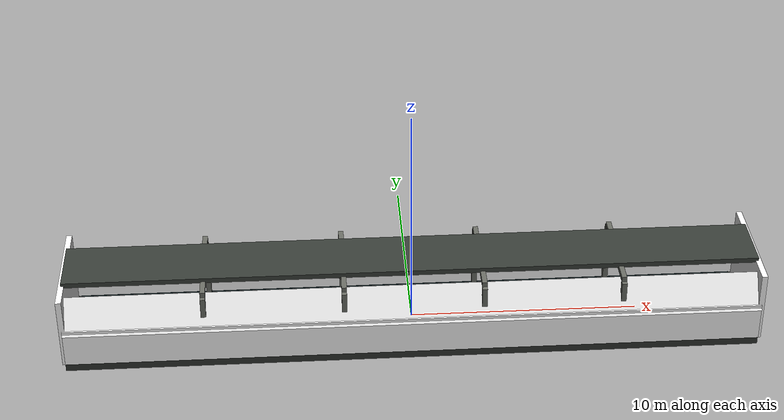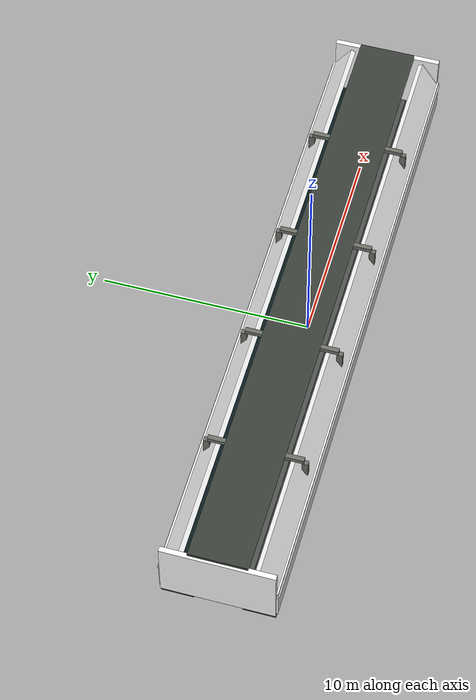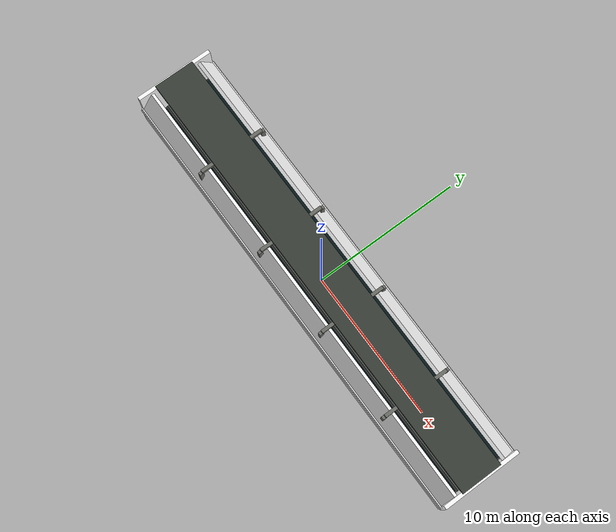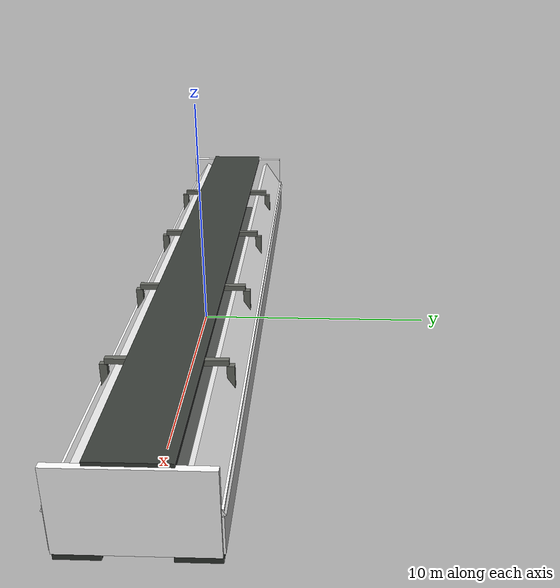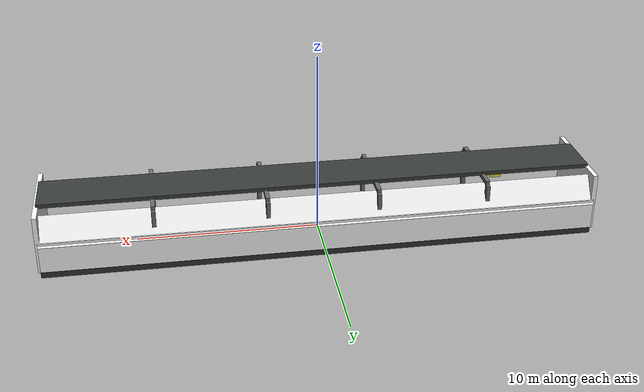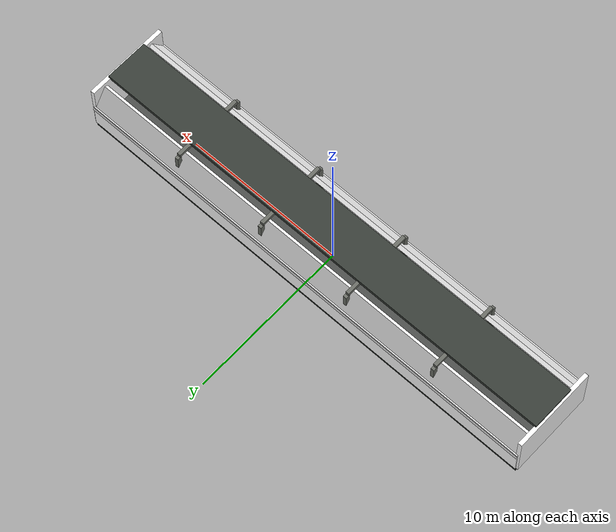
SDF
<?xml version="1.0"?>
<!-- Download-free sewer gallery: connected conduit segments, wet channels,
     masonry response texture, reflective water, and retro maintenance signs. -->
<sdf version="1.9">
  <world name="turtlebot3_sewer">
    <physics name="default" type="ignored">
      <max_step_size>0.004</max_step_size>
      <real_time_factor>1.0</real_time_factor>
      <real_time_update_rate>250</real_time_update_rate>
    </physics>
    <plugin filename="gz-sim-physics-system" name="gz::sim::systems::Physics"/>
    <plugin filename="gz-sim-scene-broadcaster-system" name="gz::sim::systems::SceneBroadcaster"/>
    <plugin filename="gz-sim-user-commands-system" name="gz::sim::systems::UserCommands"/>
    <plugin filename="gz-sim-imu-system" name="gz::sim::systems::Imu"/>
    <plugin filename="gz-sim-altimeter-system" name="gz::sim::systems::Altimeter"/>

    <scene>
      <ambient>0.08 0.1 0.12 1</ambient>
      <background>0.015 0.02 0.025 1</background>
      <shadows>true</shadows>
    </scene>
    <light type="point" name="lamp_west">
      <pose>-8 0 2.7 0 0 0</pose><diffuse>0.9 0.72 0.46 1</diffuse>
      <specular>0.2 0.18 0.14 1</specular><attenuation><range>11</range><constant>0.3</constant><linear>0.08</linear><quadratic>0.02</quadratic></attenuation>
    </light>
    <light type="point" name="lamp_centre">
      <pose>0 0 2.7 0 0 0</pose><diffuse>0.65 0.78 0.82 1</diffuse>
      <specular>0.18 0.2 0.22 1</specular><attenuation><range>11</range><constant>0.3</constant><linear>0.08</linear><quadratic>0.02</quadratic></attenuation>
    </light>
    <light type="point" name="lamp_east">
      <pose>8 0 2.7 0 0 0</pose><diffuse>0.9 0.72 0.46 1</diffuse>
      <specular>0.2 0.18 0.14 1</specular><attenuation><range>11</range><constant>0.3</constant><linear>0.08</linear><quadratic>0.02</quadratic></attenuation>
    </light>

    <model name="service_walkway">
      <static>true</static><pose>0 0 -0.05 0 0 0</pose>
      <link name="link"><collision name="collision"><geometry><box><size>30 2.2 0.1</size></box></geometry></collision>
        <visual name="visual"><laser_retro>0.38</laser_retro><geometry><box><size>30 2.2 0.1</size></box></geometry><material><diffuse>0.3 0.31 0.3 1</diffuse><specular>0.06 0.06 0.06 1</specular></material></visual></link>
    </model>
    <model name="floor_west_channel">
      <static>true</static><pose>0 1.85 -0.2 0 0 0</pose>
      <link name="link"><collision name="collision"><geometry><box><size>30 1.5 0.35</size></box></geometry></collision>
        <visual name="visual"><laser_retro>0.24</laser_retro><geometry><box><size>30 1.5 0.35</size></box></geometry><material><diffuse>0.18 0.2 0.18 1</diffuse></material></visual></link>
    </model>
    <model name="floor_east_channel">
      <static>true</static><pose>0 -1.85 -0.2 0 0 0</pose>
      <link name="link"><collision name="collision"><geometry><box><size>30 1.5 0.35</size></box></geometry></collision>
        <visual name="visual"><laser_retro>0.24</laser_retro><geometry><box><size>30 1.5 0.35</size></box></geometry><material><diffuse>0.18 0.2 0.18 1</diffuse></material></visual></link>
    </model>

    <!-- Thin, glossy water surfaces sit below the central drive path. -->
    <model name="water_north">
      <static>true</static><pose>0 1.85 0.005 0 0 0</pose>
      <link name="link"><visual name="visual"><laser_retro>0.04</laser_retro><geometry><box><size>29.5 1.25 0.015</size></box></geometry><material><diffuse>0.03 0.11 0.13 0.75</diffuse><specular>0.42 0.42 0.42 1</specular></material><transparency>0.25</transparency></visual></link>
    </model>
    <model name="water_south">
      <static>true</static><pose>0 -1.85 0.005 0 0 0</pose>
      <link name="link"><visual name="visual"><laser_retro>0.04</laser_retro><geometry><box><size>29.5 1.25 0.015</size></box></geometry><material><diffuse>0.03 0.11 0.13 0.75</diffuse><specular>0.42 0.42 0.42 1</specular></material><transparency>0.25</transparency></visual></link>
    </model>

    <!-- Continuous lower walls and inward-leaning shoulders form the conduit.
         Their PBR albedo is paired with the per-pixel Ouster response map. -->
    <model name="masonry_shell">
      <static>true</static>
      <link name="link">
        <collision name="north_wall_c"><pose>0 2.55 0.85 0 0 0</pose><geometry><box><size>30 0.25 1.7</size></box></geometry></collision>
        <visual name="north_wall"><pose>0 2.55 0.85 0 0 0</pose><geometry><box><size>30 0.25 1.7</size></box></geometry><material><ambient>1 1 1 1</ambient><diffuse>1 1 1 1</diffuse><pbr><metal><albedo_map>../media/materials/textures/brick_graffiti.png</albedo_map><metalness>0</metalness><roughness>0.9</roughness></metal></pbr></material></visual>
        <collision name="south_wall_c"><pose>0 -2.55 0.85 0 0 0</pose><geometry><box><size>30 0.25 1.7</size></box></geometry></collision>
        <visual name="south_wall"><pose>0 -2.55 0.85 0 0 0</pose><geometry><box><size>30 0.25 1.7</size></box></geometry><material><ambient>1 1 1 1</ambient><diffuse>1 1 1 1</diffuse><pbr><metal><albedo_map>../media/materials/textures/brick_graffiti.png</albedo_map><metalness>0</metalness><roughness>0.9</roughness></metal></pbr></material></visual>
        <collision name="north_shoulder_c"><pose>0 2.17 2.12 0.58 0 0</pose><geometry><box><size>30 0.25 1.7</size></box></geometry></collision>
        <visual name="north_shoulder"><pose>0 2.17 2.12 0.58 0 0</pose><geometry><box><size>30 0.25 1.7</size></box></geometry><material><ambient>1 1 1 1</ambient><diffuse>1 1 1 1</diffuse><pbr><metal><albedo_map>../media/materials/textures/brick_graffiti.png</albedo_map><metalness>0</metalness><roughness>0.9</roughness></metal></pbr></material></visual>
        <collision name="south_shoulder_c"><pose>0 -2.17 2.12 -0.58 0 0</pose><geometry><box><size>30 0.25 1.7</size></box></geometry></collision>
        <visual name="south_shoulder"><pose>0 -2.17 2.12 -0.58 0 0</pose><geometry><box><size>30 0.25 1.7</size></box></geometry><material><ambient>1 1 1 1</ambient><diffuse>1 1 1 1</diffuse><pbr><metal><albedo_map>../media/materials/textures/brick_graffiti.png</albedo_map><metalness>0</metalness><roughness>0.9</roughness></metal></pbr></material></visual>
        <collision name="ceiling_c"><pose>0 0 3.18 0 0 0</pose><geometry><box><size>30 2.7 0.22</size></box></geometry></collision>
        <visual name="ceiling"><pose>0 0 3.18 0 0 0</pose><laser_retro>0.31</laser_retro><geometry><box><size>30 2.7 0.22</size></box></geometry><material><diffuse>0.22 0.24 0.22 1</diffuse></material></visual>
        <collision name="end_west_c"><pose>-15 0 1.55 0 0 0</pose><geometry><box><size>0.25 5.2 3.2</size></box></geometry></collision>
        <visual name="end_west"><pose>-15 0 1.55 0 0 0</pose><geometry><box><size>0.25 5.2 3.2</size></box></geometry><material><ambient>1 1 1 1</ambient><diffuse>1 1 1 1</diffuse><pbr><metal><albedo_map>../media/materials/textures/brick_graffiti.png</albedo_map><metalness>0</metalness><roughness>0.9</roughness></metal></pbr></material></visual>
        <collision name="end_east_c"><pose>15 0 1.55 0 0 0</pose><geometry><box><size>0.25 5.2 3.2</size></box></geometry></collision>
        <visual name="end_east"><pose>15 0 1.55 0 0 0</pose><geometry><box><size>0.25 5.2 3.2</size></box></geometry><material><ambient>1 1 1 1</ambient><diffuse>1 1 1 1</diffuse><pbr><metal><albedo_map>../media/materials/textures/brick_graffiti.png</albedo_map><metalness>0</metalness><roughness>0.9</roughness></metal></pbr></material></visual>
      </link>
    </model>

    <!-- Repeated ribs break the gallery into a visible series of conduits. -->
    <model name="conduit_ribs">
      <static>true</static>
      <link name="link">
        <visual name="rib_west_n"><pose>-9 2.25 1.45 0 0 0</pose><laser_retro>0.52</laser_retro><geometry><box><size>0.22 0.28 2.9</size></box></geometry><material><diffuse>0.42 0.43 0.4 1</diffuse></material></visual>
        <visual name="rib_west_s"><pose>-9 -2.25 1.45 0 0 0</pose><laser_retro>0.52</laser_retro><geometry><box><size>0.22 0.28 2.9</size></box></geometry><material><diffuse>0.42 0.43 0.4 1</diffuse></material></visual>
        <visual name="rib_west_top"><pose>-9 0 3.02 0 0 0</pose><laser_retro>0.52</laser_retro><geometry><box><size>0.22 4.4 0.22</size></box></geometry><material><diffuse>0.42 0.43 0.4 1</diffuse></material></visual>
        <visual name="rib_mid_n"><pose>-3 2.25 1.45 0 0 0</pose><laser_retro>0.52</laser_retro><geometry><box><size>0.22 0.28 2.9</size></box></geometry><material><diffuse>0.42 0.43 0.4 1</diffuse></material></visual>
        <visual name="rib_mid_s"><pose>-3 -2.25 1.45 0 0 0</pose><laser_retro>0.52</laser_retro><geometry><box><size>0.22 0.28 2.9</size></box></geometry><material><diffuse>0.42 0.43 0.4 1</diffuse></material></visual>
        <visual name="rib_mid_top"><pose>-3 0 3.02 0 0 0</pose><laser_retro>0.52</laser_retro><geometry><box><size>0.22 4.4 0.22</size></box></geometry><material><diffuse>0.42 0.43 0.4 1</diffuse></material></visual>
        <visual name="rib_east_n"><pose>3 2.25 1.45 0 0 0</pose><laser_retro>0.52</laser_retro><geometry><box><size>0.22 0.28 2.9</size></box></geometry><material><diffuse>0.42 0.43 0.4 1</diffuse></material></visual>
        <visual name="rib_east_s"><pose>3 -2.25 1.45 0 0 0</pose><laser_retro>0.52</laser_retro><geometry><box><size>0.22 0.28 2.9</size></box></geometry><material><diffuse>0.42 0.43 0.4 1</diffuse></material></visual>
        <visual name="rib_east_top"><pose>3 0 3.02 0 0 0</pose><laser_retro>0.52</laser_retro><geometry><box><size>0.22 4.4 0.22</size></box></geometry><material><diffuse>0.42 0.43 0.4 1</diffuse></material></visual>
        <visual name="rib_far_n"><pose>9 2.25 1.45 0 0 0</pose><laser_retro>0.52</laser_retro><geometry><box><size>0.22 0.28 2.9</size></box></geometry><material><diffuse>0.42 0.43 0.4 1</diffuse></material></visual>
        <visual name="rib_far_s"><pose>9 -2.25 1.45 0 0 0</pose><laser_retro>0.52</laser_retro><geometry><box><size>0.22 0.28 2.9</size></box></geometry><material><diffuse>0.42 0.43 0.4 1</diffuse></material></visual>
        <visual name="rib_far_top"><pose>9 0 3.02 0 0 0</pose><laser_retro>0.52</laser_retro><geometry><box><size>0.22 4.4 0.22</size></box></geometry><material><diffuse>0.42 0.43 0.4 1</diffuse></material></visual>
      </link>
    </model>

    <model name="maintenance_sign_west"><static>true</static><pose>-11 -2.35 1.2 0 0 0</pose><link name="link"><visual name="visual"><laser_retro>8</laser_retro><geometry><box><size>0.7 0.04 0.5</size></box></geometry><material><diffuse>0.92 0.85 0.18 1</diffuse></material></visual></link></model>
    <model name="maintenance_sign_east"><static>true</static><pose>11 2.35 1.2 0 0 0</pose><link name="link"><visual name="visual"><laser_retro>8</laser_retro><geometry><box><size>0.7 0.04 0.5</size></box></geometry><material><diffuse>0.92 0.85 0.18 1</diffuse></material></visual></link></model>
  </world>
</sdf>
